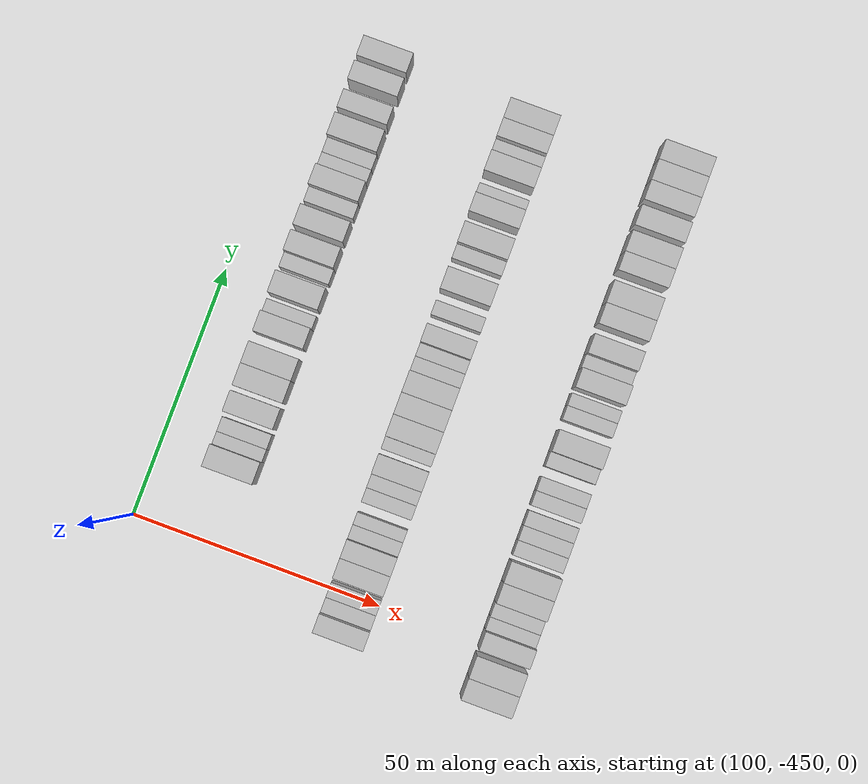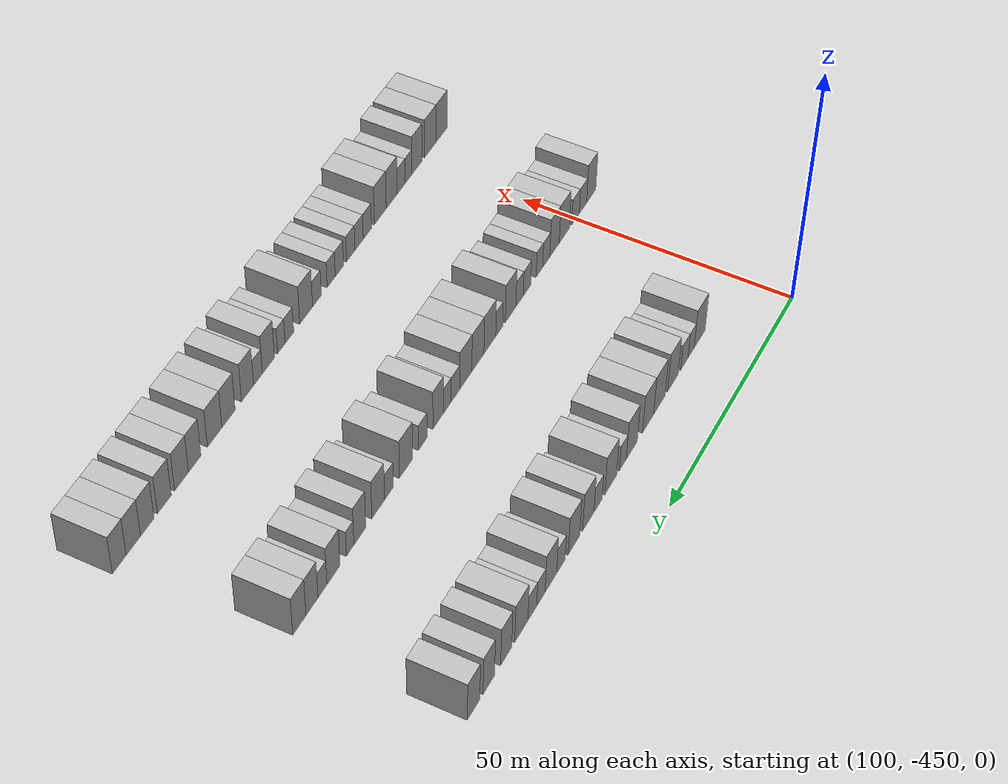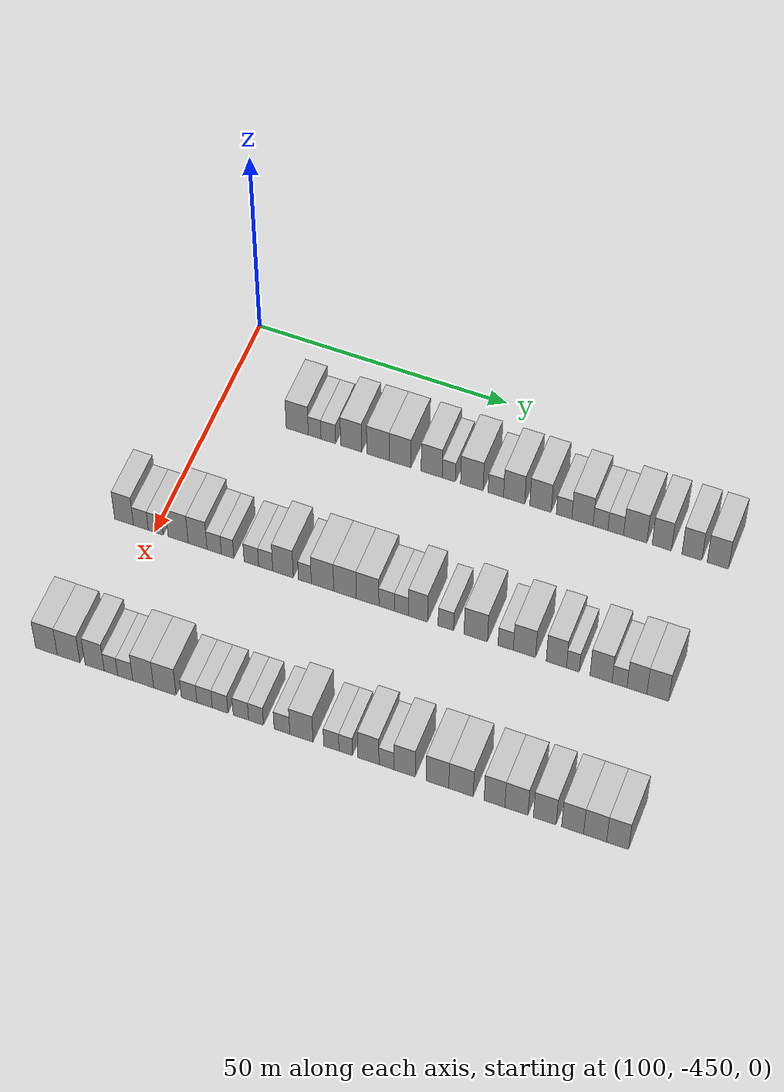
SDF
<sdf version="1.6">
 <world name="default">
  <model name="building_679">
   <static>1</static>
   <pose>115.0000 -434.2148 0 0.000000 0.000000 0.000000</pose>
   <link name="link">
    <pose>0 0 4.50 0 0 0</pose>
    <collision name="collision"><geometry><box><size>10.0000 4.4127 9.0000</size></box></geometry></collision>
    <visual name="visual">
     <cast_shadows>0</cast_shadows>
     <geometry><box><size>10.0000 4.4127 9.0000</size></box></geometry>
     <material>
      <script>
       <uri>model://HANNAS_wall/materials/scripts</uri>
       <uri>model://HANNAS_wall/materials/textures</uri>
       <name>vrc/HANNAS_wall</name>
      </script>
     </material>
    </visual>
   </link>
  </model>
  <model name="building_680">
   <static>1</static>
   <pose>115.0000 -430.7315 0 0.000000 0.000000 0.000000</pose>
   <link name="link">
    <pose>0 0 3.00 0 0 0</pose>
    <collision name="collision"><geometry><box><size>10.0000 2.5537 6.0000</size></box></geometry></collision>
    <visual name="visual">
     <cast_shadows>0</cast_shadows>
     <geometry><box><size>10.0000 2.5537 6.0000</size></box></geometry>
     <material>
      <script>
       <uri>model://HANNAS_wall/materials/scripts</uri>
       <uri>model://HANNAS_wall/materials/textures</uri>
       <name>vrc/HANNAS_wall</name>
      </script>
     </material>
    </visual>
   </link>
  </model>
  <model name="building_681">
   <static>1</static>
   <pose>115.0000 -427.9906 0 0.000000 0.000000 0.000000</pose>
   <link name="link">
    <pose>0 0 3.00 0 0 0</pose>
    <collision name="collision"><geometry><box><size>10.0000 2.9282 6.0000</size></box></geometry></collision>
    <visual name="visual">
     <cast_shadows>0</cast_shadows>
     <geometry><box><size>10.0000 2.9282 6.0000</size></box></geometry>
     <material>
      <script>
       <uri>model://HANNAS_wall/materials/scripts</uri>
       <uri>model://HANNAS_wall/materials/textures</uri>
       <name>vrc/HANNAS_wall</name>
      </script>
     </material>
    </visual>
   </link>
  </model>
  <model name="building_682">
   <static>1</static>
   <pose>115.0000 -423.4315 0 0.000000 0.000000 0.000000</pose>
   <link name="link">
    <pose>0 0 4.50 0 0 0</pose>
    <collision name="collision"><geometry><box><size>10.0000 4.1899 9.0000</size></box></geometry></collision>
    <visual name="visual">
     <cast_shadows>0</cast_shadows>
     <geometry><box><size>10.0000 4.1899 9.0000</size></box></geometry>
     <material>
      <script>
       <uri>model://HANNAS_wall/materials/scripts</uri>
       <uri>model://HANNAS_wall/materials/textures</uri>
       <name>vrc/HANNAS_wall</name>
      </script>
     </material>
    </visual>
   </link>
  </model>
  <model name="building_683">
   <static>1</static>
   <pose>115.0000 -418.1212 0 0.000000 0.000000 0.000000</pose>
   <link name="link">
    <pose>0 0 4.50 0 0 0</pose>
    <collision name="collision"><geometry><box><size>10.0000 4.4307 9.0000</size></box></geometry></collision>
    <visual name="visual">
     <cast_shadows>0</cast_shadows>
     <geometry><box><size>10.0000 4.4307 9.0000</size></box></geometry>
     <material>
      <script>
       <uri>model://HANNAS_wall/materials/scripts</uri>
       <uri>model://HANNAS_wall/materials/textures</uri>
       <name>vrc/HANNAS_wall</name>
      </script>
     </material>
    </visual>
   </link>
  </model>
  <model name="building_684">
   <static>1</static>
   <pose>115.0000 -413.7361 0 0.000000 0.000000 0.000000</pose>
   <link name="link">
    <pose>0 0 4.50 0 0 0</pose>
    <collision name="collision"><geometry><box><size>10.0000 4.3396 9.0000</size></box></geometry></collision>
    <visual name="visual">
     <cast_shadows>0</cast_shadows>
     <geometry><box><size>10.0000 4.3396 9.0000</size></box></geometry>
     <material>
      <script>
       <uri>model://HANNAS_wall/materials/scripts</uri>
       <uri>model://HANNAS_wall/materials/textures</uri>
       <name>vrc/HANNAS_wall</name>
      </script>
     </material>
    </visual>
   </link>
  </model>
  <model name="building_685">
   <static>1</static>
   <pose>115.0000 -407.4911 0 0.000000 0.000000 0.000000</pose>
   <link name="link">
    <pose>0 0 4.50 0 0 0</pose>
    <collision name="collision"><geometry><box><size>10.0000 4.1503 9.0000</size></box></geometry></collision>
    <visual name="visual">
     <cast_shadows>0</cast_shadows>
     <geometry><box><size>10.0000 4.1503 9.0000</size></box></geometry>
     <material>
      <script>
       <uri>model://HANNAS_wall/materials/scripts</uri>
       <uri>model://HANNAS_wall/materials/textures</uri>
       <name>vrc/HANNAS_wall</name>
      </script>
     </material>
    </visual>
   </link>
  </model>
  <model name="building_686">
   <static>1</static>
   <pose>115.0000 -404.1102 0 0.000000 0.000000 0.000000</pose>
   <link name="link">
    <pose>0 0 3.00 0 0 0</pose>
    <collision name="collision"><geometry><box><size>10.0000 2.6116 6.0000</size></box></geometry></collision>
    <visual name="visual">
     <cast_shadows>0</cast_shadows>
     <geometry><box><size>10.0000 2.6116 6.0000</size></box></geometry>
     <material>
      <script>
       <uri>model://HANNAS_wall/materials/scripts</uri>
       <uri>model://HANNAS_wall/materials/textures</uri>
       <name>vrc/HANNAS_wall</name>
      </script>
     </material>
    </visual>
   </link>
  </model>
  <model name="building_687">
   <static>1</static>
   <pose>115.0000 -399.6049 0 0.000000 0.000000 0.000000</pose>
   <link name="link">
    <pose>0 0 4.50 0 0 0</pose>
    <collision name="collision"><geometry><box><size>10.0000 4.3990 9.0000</size></box></geometry></collision>
    <visual name="visual">
     <cast_shadows>0</cast_shadows>
     <geometry><box><size>10.0000 4.3990 9.0000</size></box></geometry>
     <material>
      <script>
       <uri>model://HANNAS_wall/materials/scripts</uri>
       <uri>model://HANNAS_wall/materials/textures</uri>
       <name>vrc/HANNAS_wall</name>
      </script>
     </material>
    </visual>
   </link>
  </model>
  <model name="building_688">
   <static>1</static>
   <pose>115.0000 -394.9107 0 0.000000 0.000000 0.000000</pose>
   <link name="link">
    <pose>0 0 3.00 0 0 0</pose>
    <collision name="collision"><geometry><box><size>10.0000 2.9893 6.0000</size></box></geometry></collision>
    <visual name="visual">
     <cast_shadows>0</cast_shadows>
     <geometry><box><size>10.0000 2.9893 6.0000</size></box></geometry>
     <material>
      <script>
       <uri>model://HANNAS_wall/materials/scripts</uri>
       <uri>model://HANNAS_wall/materials/textures</uri>
       <name>vrc/HANNAS_wall</name>
      </script>
     </material>
    </visual>
   </link>
  </model>
  <model name="building_689">
   <static>1</static>
   <pose>115.0000 -391.3549 0 0.000000 0.000000 0.000000</pose>
   <link name="link">
    <pose>0 0 4.50 0 0 0</pose>
    <collision name="collision"><geometry><box><size>10.0000 4.1223 9.0000</size></box></geometry></collision>
    <visual name="visual">
     <cast_shadows>0</cast_shadows>
     <geometry><box><size>10.0000 4.1223 9.0000</size></box></geometry>
     <material>
      <script>
       <uri>model://HANNAS_wall/materials/scripts</uri>
       <uri>model://HANNAS_wall/materials/textures</uri>
       <name>vrc/HANNAS_wall</name>
      </script>
     </material>
    </visual>
   </link>
  </model>
  <model name="building_690">
   <static>1</static>
   <pose>115.0000 -386.2173 0 0.000000 0.000000 0.000000</pose>
   <link name="link">
    <pose>0 0 4.50 0 0 0</pose>
    <collision name="collision"><geometry><box><size>10.0000 4.1530 9.0000</size></box></geometry></collision>
    <visual name="visual">
     <cast_shadows>0</cast_shadows>
     <geometry><box><size>10.0000 4.1530 9.0000</size></box></geometry>
     <material>
      <script>
       <uri>model://HANNAS_wall/materials/scripts</uri>
       <uri>model://HANNAS_wall/materials/textures</uri>
       <name>vrc/HANNAS_wall</name>
      </script>
     </material>
    </visual>
   </link>
  </model>
  <model name="building_691">
   <static>1</static>
   <pose>115.0000 -381.6441 0 0.000000 0.000000 0.000000</pose>
   <link name="link">
    <pose>0 0 3.00 0 0 0</pose>
    <collision name="collision"><geometry><box><size>10.0000 2.9934 6.0000</size></box></geometry></collision>
    <visual name="visual">
     <cast_shadows>0</cast_shadows>
     <geometry><box><size>10.0000 2.9934 6.0000</size></box></geometry>
     <material>
      <script>
       <uri>model://HANNAS_wall/materials/scripts</uri>
       <uri>model://HANNAS_wall/materials/textures</uri>
       <name>vrc/HANNAS_wall</name>
      </script>
     </material>
    </visual>
   </link>
  </model>
  <model name="building_692">
   <static>1</static>
   <pose>115.0000 -378.1001 0 0.000000 0.000000 0.000000</pose>
   <link name="link">
    <pose>0 0 4.50 0 0 0</pose>
    <collision name="collision"><geometry><box><size>10.0000 4.0947 9.0000</size></box></geometry></collision>
    <visual name="visual">
     <cast_shadows>0</cast_shadows>
     <geometry><box><size>10.0000 4.0947 9.0000</size></box></geometry>
     <material>
      <script>
       <uri>model://HANNAS_wall/materials/scripts</uri>
       <uri>model://HANNAS_wall/materials/textures</uri>
       <name>vrc/HANNAS_wall</name>
      </script>
     </material>
    </visual>
   </link>
  </model>
  <model name="building_693">
   <static>1</static>
   <pose>115.0000 -374.6154 0 0.000000 0.000000 0.000000</pose>
   <link name="link">
    <pose>0 0 3.00 0 0 0</pose>
    <collision name="collision"><geometry><box><size>10.0000 2.8745 6.0000</size></box></geometry></collision>
    <visual name="visual">
     <cast_shadows>0</cast_shadows>
     <geometry><box><size>10.0000 2.8745 6.0000</size></box></geometry>
     <material>
      <script>
       <uri>model://HANNAS_wall/materials/scripts</uri>
       <uri>model://HANNAS_wall/materials/textures</uri>
       <name>vrc/HANNAS_wall</name>
      </script>
     </material>
    </visual>
   </link>
  </model>
  <model name="building_694">
   <static>1</static>
   <pose>115.0000 -371.6786 0 0.000000 0.000000 0.000000</pose>
   <link name="link">
    <pose>0 0 3.00 0 0 0</pose>
    <collision name="collision"><geometry><box><size>10.0000 2.9990 6.0000</size></box></geometry></collision>
    <visual name="visual">
     <cast_shadows>0</cast_shadows>
     <geometry><box><size>10.0000 2.9990 6.0000</size></box></geometry>
     <material>
      <script>
       <uri>model://HANNAS_wall/materials/scripts</uri>
       <uri>model://HANNAS_wall/materials/textures</uri>
       <name>vrc/HANNAS_wall</name>
      </script>
     </material>
    </visual>
   </link>
  </model>
  <model name="building_695">
   <static>1</static>
   <pose>115.0000 -367.9409 0 0.000000 0.000000 0.000000</pose>
   <link name="link">
    <pose>0 0 4.50 0 0 0</pose>
    <collision name="collision"><geometry><box><size>10.0000 4.4765 9.0000</size></box></geometry></collision>
    <visual name="visual">
     <cast_shadows>0</cast_shadows>
     <geometry><box><size>10.0000 4.4765 9.0000</size></box></geometry>
     <material>
      <script>
       <uri>model://HANNAS_wall/materials/scripts</uri>
       <uri>model://HANNAS_wall/materials/textures</uri>
       <name>vrc/HANNAS_wall</name>
      </script>
     </material>
    </visual>
   </link>
  </model>
  <model name="building_696">
   <static>1</static>
   <pose>115.0000 -362.8647 0 0.000000 0.000000 0.000000</pose>
   <link name="link">
    <pose>0 0 4.50 0 0 0</pose>
    <collision name="collision"><geometry><box><size>10.0000 3.6757 9.0000</size></box></geometry></collision>
    <visual name="visual">
     <cast_shadows>0</cast_shadows>
     <geometry><box><size>10.0000 3.6757 9.0000</size></box></geometry>
     <material>
      <script>
       <uri>model://HANNAS_wall/materials/scripts</uri>
       <uri>model://HANNAS_wall/materials/textures</uri>
       <name>vrc/HANNAS_wall</name>
      </script>
     </material>
    </visual>
   </link>
  </model>
  <model name="building_697">
   <static>1</static>
   <pose>115.0000 -357.1258 0 0.000000 0.000000 0.000000</pose>
   <link name="link">
    <pose>0 0 4.50 0 0 0</pose>
    <collision name="collision"><geometry><box><size>10.0000 3.8021 9.0000</size></box></geometry></collision>
    <visual name="visual">
     <cast_shadows>0</cast_shadows>
     <geometry><box><size>10.0000 3.8021 9.0000</size></box></geometry>
     <material>
      <script>
       <uri>model://HANNAS_wall/materials/scripts</uri>
       <uri>model://HANNAS_wall/materials/textures</uri>
       <name>vrc/HANNAS_wall</name>
      </script>
     </material>
    </visual>
   </link>
  </model>
  <model name="building_698">
   <static>1</static>
   <pose>115.0000 -352.2066 0 0.000000 0.000000 0.000000</pose>
   <link name="link">
    <pose>0 0 4.50 0 0 0</pose>
    <collision name="collision"><geometry><box><size>10.0000 4.0363 9.0000</size></box></geometry></collision>
    <visual name="visual">
     <cast_shadows>0</cast_shadows>
     <geometry><box><size>10.0000 4.0363 9.0000</size></box></geometry>
     <material>
      <script>
       <uri>model://HANNAS_wall/materials/scripts</uri>
       <uri>model://HANNAS_wall/materials/textures</uri>
       <name>vrc/HANNAS_wall</name>
      </script>
     </material>
    </visual>
   </link>
  </model>
  <model name="building_902">
   <static>1</static>
   <pose>145.0000 -456.1362 0 0.000000 0.000000 0.000000</pose>
   <link name="link">
    <pose>0 0 4.50 0 0 0</pose>
    <collision name="collision"><geometry><box><size>10.0000 3.7276 9.0000</size></box></geometry></collision>
    <visual name="visual">
     <cast_shadows>0</cast_shadows>
     <geometry><box><size>10.0000 3.7276 9.0000</size></box></geometry>
     <material>
      <script>
       <uri>model://HANNAS_wall/materials/scripts</uri>
       <uri>model://HANNAS_wall/materials/textures</uri>
       <name>vrc/HANNAS_wall</name>
      </script>
     </material>
    </visual>
   </link>
  </model>
  <model name="building_903">
   <static>1</static>
   <pose>145.0000 -452.7965 0 0.000000 0.000000 0.000000</pose>
   <link name="link">
    <pose>0 0 3.00 0 0 0</pose>
    <collision name="collision"><geometry><box><size>10.0000 2.9518 6.0000</size></box></geometry></collision>
    <visual name="visual">
     <cast_shadows>0</cast_shadows>
     <geometry><box><size>10.0000 2.9518 6.0000</size></box></geometry>
     <material>
      <script>
       <uri>model://HANNAS_wall/materials/scripts</uri>
       <uri>model://HANNAS_wall/materials/textures</uri>
       <name>vrc/HANNAS_wall</name>
      </script>
     </material>
    </visual>
   </link>
  </model>
  <model name="building_904">
   <static>1</static>
   <pose>145.0000 -449.8438 0 0.000000 0.000000 0.000000</pose>
   <link name="link">
    <pose>0 0 3.00 0 0 0</pose>
    <collision name="collision"><geometry><box><size>10.0000 2.9536 6.0000</size></box></geometry></collision>
    <visual name="visual">
     <cast_shadows>0</cast_shadows>
     <geometry><box><size>10.0000 2.9536 6.0000</size></box></geometry>
     <material>
      <script>
       <uri>model://HANNAS_wall/materials/scripts</uri>
       <uri>model://HANNAS_wall/materials/textures</uri>
       <name>vrc/HANNAS_wall</name>
      </script>
     </material>
    </visual>
   </link>
  </model>
  <model name="building_905">
   <static>1</static>
   <pose>145.0000 -445.3836 0 0.000000 0.000000 0.000000</pose>
   <link name="link">
    <pose>0 0 4.50 0 0 0</pose>
    <collision name="collision"><geometry><box><size>10.0000 3.9669 9.0000</size></box></geometry></collision>
    <visual name="visual">
     <cast_shadows>0</cast_shadows>
     <geometry><box><size>10.0000 3.9669 9.0000</size></box></geometry>
     <material>
      <script>
       <uri>model://HANNAS_wall/materials/scripts</uri>
       <uri>model://HANNAS_wall/materials/textures</uri>
       <name>vrc/HANNAS_wall</name>
      </script>
     </material>
    </visual>
   </link>
  </model>
  <model name="building_906">
   <static>1</static>
   <pose>145.0000 -441.5487 0 0.000000 0.000000 0.000000</pose>
   <link name="link">
    <pose>0 0 4.50 0 0 0</pose>
    <collision name="collision"><geometry><box><size>10.0000 3.7028 9.0000</size></box></geometry></collision>
    <visual name="visual">
     <cast_shadows>0</cast_shadows>
     <geometry><box><size>10.0000 3.7028 9.0000</size></box></geometry>
     <material>
      <script>
       <uri>model://HANNAS_wall/materials/scripts</uri>
       <uri>model://HANNAS_wall/materials/textures</uri>
       <name>vrc/HANNAS_wall</name>
      </script>
     </material>
    </visual>
   </link>
  </model>
  <model name="building_907">
   <static>1</static>
   <pose>145.0000 -438.2969 0 0.000000 0.000000 0.000000</pose>
   <link name="link">
    <pose>0 0 3.00 0 0 0</pose>
    <collision name="collision"><geometry><box><size>10.0000 2.8007 6.0000</size></box></geometry></collision>
    <visual name="visual">
     <cast_shadows>0</cast_shadows>
     <geometry><box><size>10.0000 2.8007 6.0000</size></box></geometry>
     <material>
      <script>
       <uri>model://HANNAS_wall/materials/scripts</uri>
       <uri>model://HANNAS_wall/materials/textures</uri>
       <name>vrc/HANNAS_wall</name>
      </script>
     </material>
    </visual>
   </link>
  </model>
  <model name="building_908">
   <static>1</static>
   <pose>145.0000 -435.6580 0 0.000000 0.000000 0.000000</pose>
   <link name="link">
    <pose>0 0 3.00 0 0 0</pose>
    <collision name="collision"><geometry><box><size>10.0000 2.4772 6.0000</size></box></geometry></collision>
    <visual name="visual">
     <cast_shadows>0</cast_shadows>
     <geometry><box><size>10.0000 2.4772 6.0000</size></box></geometry>
     <material>
      <script>
       <uri>model://HANNAS_wall/materials/scripts</uri>
       <uri>model://HANNAS_wall/materials/textures</uri>
       <name>vrc/HANNAS_wall</name>
      </script>
     </material>
    </visual>
   </link>
  </model>
  <model name="building_909">
   <static>1</static>
   <pose>145.0000 -430.9965 0 0.000000 0.000000 0.000000</pose>
   <link name="link">
    <pose>0 0 3.00 0 0 0</pose>
    <collision name="collision"><geometry><box><size>10.0000 2.8457 6.0000</size></box></geometry></collision>
    <visual name="visual">
     <cast_shadows>0</cast_shadows>
     <geometry><box><size>10.0000 2.8457 6.0000</size></box></geometry>
     <material>
      <script>
       <uri>model://HANNAS_wall/materials/scripts</uri>
       <uri>model://HANNAS_wall/materials/textures</uri>
       <name>vrc/HANNAS_wall</name>
      </script>
     </material>
    </visual>
   </link>
  </model>
  <model name="building_910">
   <static>1</static>
   <pose>145.0000 -428.1838 0 0.000000 0.000000 0.000000</pose>
   <link name="link">
    <pose>0 0 3.00 0 0 0</pose>
    <collision name="collision"><geometry><box><size>10.0000 2.7797 6.0000</size></box></geometry></collision>
    <visual name="visual">
     <cast_shadows>0</cast_shadows>
     <geometry><box><size>10.0000 2.7797 6.0000</size></box></geometry>
     <material>
      <script>
       <uri>model://HANNAS_wall/materials/scripts</uri>
       <uri>model://HANNAS_wall/materials/textures</uri>
       <name>vrc/HANNAS_wall</name>
      </script>
     </material>
    </visual>
   </link>
  </model>
  <model name="building_911">
   <static>1</static>
   <pose>145.0000 -424.8024 0 0.000000 0.000000 0.000000</pose>
   <link name="link">
    <pose>0 0 4.50 0 0 0</pose>
    <collision name="collision"><geometry><box><size>10.0000 3.9832 9.0000</size></box></geometry></collision>
    <visual name="visual">
     <cast_shadows>0</cast_shadows>
     <geometry><box><size>10.0000 3.9832 9.0000</size></box></geometry>
     <material>
      <script>
       <uri>model://HANNAS_wall/materials/scripts</uri>
       <uri>model://HANNAS_wall/materials/textures</uri>
       <name>vrc/HANNAS_wall</name>
      </script>
     </material>
    </visual>
   </link>
  </model>
  <model name="building_912">
   <static>1</static>
   <pose>145.0000 -420.5620 0 0.000000 0.000000 0.000000</pose>
   <link name="link">
    <pose>0 0 3.00 0 0 0</pose>
    <collision name="collision"><geometry><box><size>10.0000 2.4976 6.0000</size></box></geometry></collision>
    <visual name="visual">
     <cast_shadows>0</cast_shadows>
     <geometry><box><size>10.0000 2.4976 6.0000</size></box></geometry>
     <material>
      <script>
       <uri>model://HANNAS_wall/materials/scripts</uri>
       <uri>model://HANNAS_wall/materials/textures</uri>
       <name>vrc/HANNAS_wall</name>
      </script>
     </material>
    </visual>
   </link>
  </model>
  <model name="building_913">
   <static>1</static>
   <pose>145.0000 -417.1455 0 0.000000 0.000000 0.000000</pose>
   <link name="link">
    <pose>0 0 4.50 0 0 0</pose>
    <collision name="collision"><geometry><box><size>10.0000 4.3353 9.0000</size></box></geometry></collision>
    <visual name="visual">
     <cast_shadows>0</cast_shadows>
     <geometry><box><size>10.0000 4.3353 9.0000</size></box></geometry>
     <material>
      <script>
       <uri>model://HANNAS_wall/materials/scripts</uri>
       <uri>model://HANNAS_wall/materials/textures</uri>
       <name>vrc/HANNAS_wall</name>
      </script>
     </material>
    </visual>
   </link>
  </model>
  <model name="building_914">
   <static>1</static>
   <pose>145.0000 -412.8037 0 0.000000 0.000000 0.000000</pose>
   <link name="link">
    <pose>0 0 4.50 0 0 0</pose>
    <collision name="collision"><geometry><box><size>10.0000 4.3484 9.0000</size></box></geometry></collision>
    <visual name="visual">
     <cast_shadows>0</cast_shadows>
     <geometry><box><size>10.0000 4.3484 9.0000</size></box></geometry>
     <material>
      <script>
       <uri>model://HANNAS_wall/materials/scripts</uri>
       <uri>model://HANNAS_wall/materials/textures</uri>
       <name>vrc/HANNAS_wall</name>
      </script>
     </material>
    </visual>
   </link>
  </model>
  <model name="building_915">
   <static>1</static>
   <pose>145.0000 -408.4480 0 0.000000 0.000000 0.000000</pose>
   <link name="link">
    <pose>0 0 4.50 0 0 0</pose>
    <collision name="collision"><geometry><box><size>10.0000 4.3628 9.0000</size></box></geometry></collision>
    <visual name="visual">
     <cast_shadows>0</cast_shadows>
     <geometry><box><size>10.0000 4.3628 9.0000</size></box></geometry>
     <material>
      <script>
       <uri>model://HANNAS_wall/materials/scripts</uri>
       <uri>model://HANNAS_wall/materials/textures</uri>
       <name>vrc/HANNAS_wall</name>
      </script>
     </material>
    </visual>
   </link>
  </model>
  <model name="building_916">
   <static>1</static>
   <pose>145.0000 -404.7758 0 0.000000 0.000000 0.000000</pose>
   <link name="link">
    <pose>0 0 3.00 0 0 0</pose>
    <collision name="collision"><geometry><box><size>10.0000 2.9817 6.0000</size></box></geometry></collision>
    <visual name="visual">
     <cast_shadows>0</cast_shadows>
     <geometry><box><size>10.0000 2.9817 6.0000</size></box></geometry>
     <material>
      <script>
       <uri>model://HANNAS_wall/materials/scripts</uri>
       <uri>model://HANNAS_wall/materials/textures</uri>
       <name>vrc/HANNAS_wall</name>
      </script>
     </material>
    </visual>
   </link>
  </model>
  <model name="building_917">
   <static>1</static>
   <pose>145.0000 -401.9363 0 0.000000 0.000000 0.000000</pose>
   <link name="link">
    <pose>0 0 3.00 0 0 0</pose>
    <collision name="collision"><geometry><box><size>10.0000 2.6973 6.0000</size></box></geometry></collision>
    <visual name="visual">
     <cast_shadows>0</cast_shadows>
     <geometry><box><size>10.0000 2.6973 6.0000</size></box></geometry>
     <material>
      <script>
       <uri>model://HANNAS_wall/materials/scripts</uri>
       <uri>model://HANNAS_wall/materials/textures</uri>
       <name>vrc/HANNAS_wall</name>
      </script>
     </material>
    </visual>
   </link>
  </model>
  <model name="building_918">
   <static>1</static>
   <pose>145.0000 -398.7618 0 0.000000 0.000000 0.000000</pose>
   <link name="link">
    <pose>0 0 4.50 0 0 0</pose>
    <collision name="collision"><geometry><box><size>10.0000 3.6517 9.0000</size></box></geometry></collision>
    <visual name="visual">
     <cast_shadows>0</cast_shadows>
     <geometry><box><size>10.0000 3.6517 9.0000</size></box></geometry>
     <material>
      <script>
       <uri>model://HANNAS_wall/materials/scripts</uri>
       <uri>model://HANNAS_wall/materials/textures</uri>
       <name>vrc/HANNAS_wall</name>
      </script>
     </material>
    </visual>
   </link>
  </model>
  <model name="building_919">
   <static>1</static>
   <pose>145.0000 -393.4655 0 0.000000 0.000000 0.000000</pose>
   <link name="link">
    <pose>0 0 3.00 0 0 0</pose>
    <collision name="collision"><geometry><box><size>10.0000 2.9409 6.0000</size></box></geometry></collision>
    <visual name="visual">
     <cast_shadows>0</cast_shadows>
     <geometry><box><size>10.0000 2.9409 6.0000</size></box></geometry>
     <material>
      <script>
       <uri>model://HANNAS_wall/materials/scripts</uri>
       <uri>model://HANNAS_wall/materials/textures</uri>
       <name>vrc/HANNAS_wall</name>
      </script>
     </material>
    </visual>
   </link>
  </model>
  <model name="building_920">
   <static>1</static>
   <pose>145.0000 -387.7738 0 0.000000 0.000000 0.000000</pose>
   <link name="link">
    <pose>0 0 4.50 0 0 0</pose>
    <collision name="collision"><geometry><box><size>10.0000 4.4424 9.0000</size></box></geometry></collision>
    <visual name="visual">
     <cast_shadows>0</cast_shadows>
     <geometry><box><size>10.0000 4.4424 9.0000</size></box></geometry>
     <material>
      <script>
       <uri>model://HANNAS_wall/materials/scripts</uri>
       <uri>model://HANNAS_wall/materials/textures</uri>
       <name>vrc/HANNAS_wall</name>
      </script>
     </material>
    </visual>
   </link>
  </model>
  <model name="building_921">
   <static>1</static>
   <pose>145.0000 -382.1110 0 0.000000 0.000000 0.000000</pose>
   <link name="link">
    <pose>0 0 3.00 0 0 0</pose>
    <collision name="collision"><geometry><box><size>10.0000 2.8831 6.0000</size></box></geometry></collision>
    <visual name="visual">
     <cast_shadows>0</cast_shadows>
     <geometry><box><size>10.0000 2.8831 6.0000</size></box></geometry>
     <material>
      <script>
       <uri>model://HANNAS_wall/materials/scripts</uri>
       <uri>model://HANNAS_wall/materials/textures</uri>
       <name>vrc/HANNAS_wall</name>
      </script>
     </material>
    </visual>
   </link>
  </model>
  <model name="building_922">
   <static>1</static>
   <pose>145.0000 -378.5743 0 0.000000 0.000000 0.000000</pose>
   <link name="link">
    <pose>0 0 4.50 0 0 0</pose>
    <collision name="collision"><geometry><box><size>10.0000 4.1902 9.0000</size></box></geometry></collision>
    <visual name="visual">
     <cast_shadows>0</cast_shadows>
     <geometry><box><size>10.0000 4.1902 9.0000</size></box></geometry>
     <material>
      <script>
       <uri>model://HANNAS_wall/materials/scripts</uri>
       <uri>model://HANNAS_wall/materials/textures</uri>
       <name>vrc/HANNAS_wall</name>
      </script>
     </material>
    </visual>
   </link>
  </model>
  <model name="building_923">
   <static>1</static>
   <pose>145.0000 -372.5836 0 0.000000 0.000000 0.000000</pose>
   <link name="link">
    <pose>0 0 4.50 0 0 0</pose>
    <collision name="collision"><geometry><box><size>10.0000 3.7912 9.0000</size></box></geometry></collision>
    <visual name="visual">
     <cast_shadows>0</cast_shadows>
     <geometry><box><size>10.0000 3.7912 9.0000</size></box></geometry>
     <material>
      <script>
       <uri>model://HANNAS_wall/materials/scripts</uri>
       <uri>model://HANNAS_wall/materials/textures</uri>
       <name>vrc/HANNAS_wall</name>
      </script>
     </material>
    </visual>
   </link>
  </model>
  <model name="building_924">
   <static>1</static>
   <pose>145.0000 -369.4856 0 0.000000 0.000000 0.000000</pose>
   <link name="link">
    <pose>0 0 3.00 0 0 0</pose>
    <collision name="collision"><geometry><box><size>10.0000 2.4049 6.0000</size></box></geometry></collision>
    <visual name="visual">
     <cast_shadows>0</cast_shadows>
     <geometry><box><size>10.0000 2.4049 6.0000</size></box></geometry>
     <material>
      <script>
       <uri>model://HANNAS_wall/materials/scripts</uri>
       <uri>model://HANNAS_wall/materials/textures</uri>
       <name>vrc/HANNAS_wall</name>
      </script>
     </material>
    </visual>
   </link>
  </model>
  <model name="building_925">
   <static>1</static>
   <pose>145.0000 -364.2286 0 0.000000 0.000000 0.000000</pose>
   <link name="link">
    <pose>0 0 4.50 0 0 0</pose>
    <collision name="collision"><geometry><box><size>10.0000 4.1092 9.0000</size></box></geometry></collision>
    <visual name="visual">
     <cast_shadows>0</cast_shadows>
     <geometry><box><size>10.0000 4.1092 9.0000</size></box></geometry>
     <material>
      <script>
       <uri>model://HANNAS_wall/materials/scripts</uri>
       <uri>model://HANNAS_wall/materials/textures</uri>
       <name>vrc/HANNAS_wall</name>
      </script>
     </material>
    </visual>
   </link>
  </model>
  <model name="building_926">
   <static>1</static>
   <pose>145.0000 -360.7850 0 0.000000 0.000000 0.000000</pose>
   <link name="link">
    <pose>0 0 3.00 0 0 0</pose>
    <collision name="collision"><geometry><box><size>10.0000 2.7780 6.0000</size></box></geometry></collision>
    <visual name="visual">
     <cast_shadows>0</cast_shadows>
     <geometry><box><size>10.0000 2.7780 6.0000</size></box></geometry>
     <material>
      <script>
       <uri>model://HANNAS_wall/materials/scripts</uri>
       <uri>model://HANNAS_wall/materials/textures</uri>
       <name>vrc/HANNAS_wall</name>
      </script>
     </material>
    </visual>
   </link>
  </model>
  <model name="building_927">
   <static>1</static>
   <pose>145.0000 -357.5491 0 0.000000 0.000000 0.000000</pose>
   <link name="link">
    <pose>0 0 4.50 0 0 0</pose>
    <collision name="collision"><geometry><box><size>10.0000 3.6938 9.0000</size></box></geometry></collision>
    <visual name="visual">
     <cast_shadows>0</cast_shadows>
     <geometry><box><size>10.0000 3.6938 9.0000</size></box></geometry>
     <material>
      <script>
       <uri>model://HANNAS_wall/materials/scripts</uri>
       <uri>model://HANNAS_wall/materials/textures</uri>
       <name>vrc/HANNAS_wall</name>
      </script>
     </material>
    </visual>
   </link>
  </model>
  <model name="building_928">
   <static>1</static>
   <pose>145.0000 -353.6862 0 0.000000 0.000000 0.000000</pose>
   <link name="link">
    <pose>0 0 4.50 0 0 0</pose>
    <collision name="collision"><geometry><box><size>10.0000 4.0320 9.0000</size></box></geometry></collision>
    <visual name="visual">
     <cast_shadows>0</cast_shadows>
     <geometry><box><size>10.0000 4.0320 9.0000</size></box></geometry>
     <material>
      <script>
       <uri>model://HANNAS_wall/materials/scripts</uri>
       <uri>model://HANNAS_wall/materials/textures</uri>
       <name>vrc/HANNAS_wall</name>
      </script>
     </material>
    </visual>
   </link>
  </model>
  <model name="building_1109">
   <static>1</static>
   <pose>175.0000 -457.8905 0 0.000000 0.000000 0.000000</pose>
   <link name="link">
    <pose>0 0 4.50 0 0 0</pose>
    <collision name="collision"><geometry><box><size>10.0000 4.2190 9.0000</size></box></geometry></collision>
    <visual name="visual">
     <cast_shadows>0</cast_shadows>
     <geometry><box><size>10.0000 4.2190 9.0000</size></box></geometry>
     <material>
      <script>
       <uri>model://HANNAS_wall/materials/scripts</uri>
       <uri>model://HANNAS_wall/materials/textures</uri>
       <name>vrc/HANNAS_wall</name>
      </script>
     </material>
    </visual>
   </link>
  </model>
  <model name="building_1110">
   <static>1</static>
   <pose>175.0000 -453.5835 0 0.000000 0.000000 0.000000</pose>
   <link name="link">
    <pose>0 0 4.50 0 0 0</pose>
    <collision name="collision"><geometry><box><size>10.0000 4.3950 9.0000</size></box></geometry></collision>
    <visual name="visual">
     <cast_shadows>0</cast_shadows>
     <geometry><box><size>10.0000 4.3950 9.0000</size></box></geometry>
     <material>
      <script>
       <uri>model://HANNAS_wall/materials/scripts</uri>
       <uri>model://HANNAS_wall/materials/textures</uri>
       <name>vrc/HANNAS_wall</name>
      </script>
     </material>
    </visual>
   </link>
  </model>
  <model name="building_1111">
   <static>1</static>
   <pose>175.0000 -448.5337 0 0.000000 0.000000 0.000000</pose>
   <link name="link">
    <pose>0 0 4.50 0 0 0</pose>
    <collision name="collision"><geometry><box><size>10.0000 3.7046 9.0000</size></box></geometry></collision>
    <visual name="visual">
     <cast_shadows>0</cast_shadows>
     <geometry><box><size>10.0000 3.7046 9.0000</size></box></geometry>
     <material>
      <script>
       <uri>model://HANNAS_wall/materials/scripts</uri>
       <uri>model://HANNAS_wall/materials/textures</uri>
       <name>vrc/HANNAS_wall</name>
      </script>
     </material>
    </visual>
   </link>
  </model>
  <model name="building_1112">
   <static>1</static>
   <pose>175.0000 -445.3770 0 0.000000 0.000000 0.000000</pose>
   <link name="link">
    <pose>0 0 3.00 0 0 0</pose>
    <collision name="collision"><geometry><box><size>10.0000 2.6089 6.0000</size></box></geometry></collision>
    <visual name="visual">
     <cast_shadows>0</cast_shadows>
     <geometry><box><size>10.0000 2.6089 6.0000</size></box></geometry>
     <material>
      <script>
       <uri>model://HANNAS_wall/materials/scripts</uri>
       <uri>model://HANNAS_wall/materials/textures</uri>
       <name>vrc/HANNAS_wall</name>
      </script>
     </material>
    </visual>
   </link>
  </model>
  <model name="building_1113">
   <static>1</static>
   <pose>175.0000 -442.6216 0 0.000000 0.000000 0.000000</pose>
   <link name="link">
    <pose>0 0 3.00 0 0 0</pose>
    <collision name="collision"><geometry><box><size>10.0000 2.9018 6.0000</size></box></geometry></collision>
    <visual name="visual">
     <cast_shadows>0</cast_shadows>
     <geometry><box><size>10.0000 2.9018 6.0000</size></box></geometry>
     <material>
      <script>
       <uri>model://HANNAS_wall/materials/scripts</uri>
       <uri>model://HANNAS_wall/materials/textures</uri>
       <name>vrc/HANNAS_wall</name>
      </script>
     </material>
    </visual>
   </link>
  </model>
  <model name="building_1114">
   <static>1</static>
   <pose>175.0000 -439.1679 0 0.000000 0.000000 0.000000</pose>
   <link name="link">
    <pose>0 0 4.50 0 0 0</pose>
    <collision name="collision"><geometry><box><size>10.0000 4.0056 9.0000</size></box></geometry></collision>
    <visual name="visual">
     <cast_shadows>0</cast_shadows>
     <geometry><box><size>10.0000 4.0056 9.0000</size></box></geometry>
     <material>
      <script>
       <uri>model://HANNAS_wall/materials/scripts</uri>
       <uri>model://HANNAS_wall/materials/textures</uri>
       <name>vrc/HANNAS_wall</name>
      </script>
     </material>
    </visual>
   </link>
  </model>
  <model name="building_1115">
   <static>1</static>
   <pose>175.0000 -435.0131 0 0.000000 0.000000 0.000000</pose>
   <link name="link">
    <pose>0 0 4.50 0 0 0</pose>
    <collision name="collision"><geometry><box><size>10.0000 4.3040 9.0000</size></box></geometry></collision>
    <visual name="visual">
     <cast_shadows>0</cast_shadows>
     <geometry><box><size>10.0000 4.3040 9.0000</size></box></geometry>
     <material>
      <script>
       <uri>model://HANNAS_wall/materials/scripts</uri>
       <uri>model://HANNAS_wall/materials/textures</uri>
       <name>vrc/HANNAS_wall</name>
      </script>
     </material>
    </visual>
   </link>
  </model>
  <model name="building_1116">
   <static>1</static>
   <pose>175.0000 -430.3739 0 0.000000 0.000000 0.000000</pose>
   <link name="link">
    <pose>0 0 3.00 0 0 0</pose>
    <collision name="collision"><geometry><box><size>10.0000 2.9744 6.0000</size></box></geometry></collision>
    <visual name="visual">
     <cast_shadows>0</cast_shadows>
     <geometry><box><size>10.0000 2.9744 6.0000</size></box></geometry>
     <material>
      <script>
       <uri>model://HANNAS_wall/materials/scripts</uri>
       <uri>model://HANNAS_wall/materials/textures</uri>
       <name>vrc/HANNAS_wall</name>
      </script>
     </material>
    </visual>
   </link>
  </model>
  <model name="building_1117">
   <static>1</static>
   <pose>175.0000 -427.4202 0 0.000000 0.000000 0.000000</pose>
   <link name="link">
    <pose>0 0 3.00 0 0 0</pose>
    <collision name="collision"><geometry><box><size>10.0000 2.9330 6.0000</size></box></geometry></collision>
    <visual name="visual">
     <cast_shadows>0</cast_shadows>
     <geometry><box><size>10.0000 2.9330 6.0000</size></box></geometry>
     <material>
      <script>
       <uri>model://HANNAS_wall/materials/scripts</uri>
       <uri>model://HANNAS_wall/materials/textures</uri>
       <name>vrc/HANNAS_wall</name>
      </script>
     </material>
    </visual>
   </link>
  </model>
  <model name="building_1118">
   <static>1</static>
   <pose>175.0000 -424.4614 0 0.000000 0.000000 0.000000</pose>
   <link name="link">
    <pose>0 0 3.00 0 0 0</pose>
    <collision name="collision"><geometry><box><size>10.0000 2.9847 6.0000</size></box></geometry></collision>
    <visual name="visual">
     <cast_shadows>0</cast_shadows>
     <geometry><box><size>10.0000 2.9847 6.0000</size></box></geometry>
     <material>
      <script>
       <uri>model://HANNAS_wall/materials/scripts</uri>
       <uri>model://HANNAS_wall/materials/textures</uri>
       <name>vrc/HANNAS_wall</name>
      </script>
     </material>
    </visual>
   </link>
  </model>
  <model name="building_1119">
   <static>1</static>
   <pose>175.0000 -420.5088 0 0.000000 0.000000 0.000000</pose>
   <link name="link">
    <pose>0 0 3.00 0 0 0</pose>
    <collision name="collision"><geometry><box><size>10.0000 2.9205 6.0000</size></box></geometry></collision>
    <visual name="visual">
     <cast_shadows>0</cast_shadows>
     <geometry><box><size>10.0000 2.9205 6.0000</size></box></geometry>
     <material>
      <script>
       <uri>model://HANNAS_wall/materials/scripts</uri>
       <uri>model://HANNAS_wall/materials/textures</uri>
       <name>vrc/HANNAS_wall</name>
      </script>
     </material>
    </visual>
   </link>
  </model>
  <model name="building_1120">
   <static>1</static>
   <pose>175.0000 -417.6410 0 0.000000 0.000000 0.000000</pose>
   <link name="link">
    <pose>0 0 3.00 0 0 0</pose>
    <collision name="collision"><geometry><box><size>10.0000 2.8151 6.0000</size></box></geometry></collision>
    <visual name="visual">
     <cast_shadows>0</cast_shadows>
     <geometry><box><size>10.0000 2.8151 6.0000</size></box></geometry>
     <material>
      <script>
       <uri>model://HANNAS_wall/materials/scripts</uri>
       <uri>model://HANNAS_wall/materials/textures</uri>
       <name>vrc/HANNAS_wall</name>
      </script>
     </material>
    </visual>
   </link>
  </model>
  <model name="building_1121">
   <static>1</static>
   <pose>175.0000 -412.7511 0 0.000000 0.000000 0.000000</pose>
   <link name="link">
    <pose>0 0 3.00 0 0 0</pose>
    <collision name="collision"><geometry><box><size>10.0000 2.9648 6.0000</size></box></geometry></collision>
    <visual name="visual">
     <cast_shadows>0</cast_shadows>
     <geometry><box><size>10.0000 2.9648 6.0000</size></box></geometry>
     <material>
      <script>
       <uri>model://HANNAS_wall/materials/scripts</uri>
       <uri>model://HANNAS_wall/materials/textures</uri>
       <name>vrc/HANNAS_wall</name>
      </script>
     </material>
    </visual>
   </link>
  </model>
  <model name="building_1122">
   <static>1</static>
   <pose>175.0000 -409.0902 0 0.000000 0.000000 0.000000</pose>
   <link name="link">
    <pose>0 0 4.50 0 0 0</pose>
    <collision name="collision"><geometry><box><size>10.0000 4.3569 9.0000</size></box></geometry></collision>
    <visual name="visual">
     <cast_shadows>0</cast_shadows>
     <geometry><box><size>10.0000 4.3569 9.0000</size></box></geometry>
     <material>
      <script>
       <uri>model://HANNAS_wall/materials/scripts</uri>
       <uri>model://HANNAS_wall/materials/textures</uri>
       <name>vrc/HANNAS_wall</name>
      </script>
     </material>
    </visual>
   </link>
  </model>
  <model name="building_1123">
   <static>1</static>
   <pose>175.0000 -403.4859 0 0.000000 0.000000 0.000000</pose>
   <link name="link">
    <pose>0 0 3.00 0 0 0</pose>
    <collision name="collision"><geometry><box><size>10.0000 2.8518 6.0000</size></box></geometry></collision>
    <visual name="visual">
     <cast_shadows>0</cast_shadows>
     <geometry><box><size>10.0000 2.8518 6.0000</size></box></geometry>
     <material>
      <script>
       <uri>model://HANNAS_wall/materials/scripts</uri>
       <uri>model://HANNAS_wall/materials/textures</uri>
       <name>vrc/HANNAS_wall</name>
      </script>
     </material>
    </visual>
   </link>
  </model>
  <model name="building_1124">
   <static>1</static>
   <pose>175.0000 -400.8041 0 0.000000 0.000000 0.000000</pose>
   <link name="link">
    <pose>0 0 3.00 0 0 0</pose>
    <collision name="collision"><geometry><box><size>10.0000 2.5117 6.0000</size></box></geometry></collision>
    <visual name="visual">
     <cast_shadows>0</cast_shadows>
     <geometry><box><size>10.0000 2.5117 6.0000</size></box></geometry>
     <material>
      <script>
       <uri>model://HANNAS_wall/materials/scripts</uri>
       <uri>model://HANNAS_wall/materials/textures</uri>
       <name>vrc/HANNAS_wall</name>
      </script>
     </material>
    </visual>
   </link>
  </model>
  <model name="building_1125">
   <static>1</static>
   <pose>175.0000 -396.5764 0 0.000000 0.000000 0.000000</pose>
   <link name="link">
    <pose>0 0 4.50 0 0 0</pose>
    <collision name="collision"><geometry><box><size>10.0000 3.9437 9.0000</size></box></geometry></collision>
    <visual name="visual">
     <cast_shadows>0</cast_shadows>
     <geometry><box><size>10.0000 3.9437 9.0000</size></box></geometry>
     <material>
      <script>
       <uri>model://HANNAS_wall/materials/scripts</uri>
       <uri>model://HANNAS_wall/materials/textures</uri>
       <name>vrc/HANNAS_wall</name>
      </script>
     </material>
    </visual>
   </link>
  </model>
  <model name="building_1126">
   <static>1</static>
   <pose>175.0000 -393.1866 0 0.000000 0.000000 0.000000</pose>
   <link name="link">
    <pose>0 0 3.00 0 0 0</pose>
    <collision name="collision"><geometry><box><size>10.0000 2.8358 6.0000</size></box></geometry></collision>
    <visual name="visual">
     <cast_shadows>0</cast_shadows>
     <geometry><box><size>10.0000 2.8358 6.0000</size></box></geometry>
     <material>
      <script>
       <uri>model://HANNAS_wall/materials/scripts</uri>
       <uri>model://HANNAS_wall/materials/textures</uri>
       <name>vrc/HANNAS_wall</name>
      </script>
     </material>
    </visual>
   </link>
  </model>
  <model name="building_1127">
   <static>1</static>
   <pose>175.0000 -389.8239 0 0.000000 0.000000 0.000000</pose>
   <link name="link">
    <pose>0 0 4.50 0 0 0</pose>
    <collision name="collision"><geometry><box><size>10.0000 3.8897 9.0000</size></box></geometry></collision>
    <visual name="visual">
     <cast_shadows>0</cast_shadows>
     <geometry><box><size>10.0000 3.8897 9.0000</size></box></geometry>
     <material>
      <script>
       <uri>model://HANNAS_wall/materials/scripts</uri>
       <uri>model://HANNAS_wall/materials/textures</uri>
       <name>vrc/HANNAS_wall</name>
      </script>
     </material>
    </visual>
   </link>
  </model>
  <model name="building_1128">
   <static>1</static>
   <pose>175.0000 -383.7833 0 0.000000 0.000000 0.000000</pose>
   <link name="link">
    <pose>0 0 4.50 0 0 0</pose>
    <collision name="collision"><geometry><box><size>10.0000 4.1916 9.0000</size></box></geometry></collision>
    <visual name="visual">
     <cast_shadows>0</cast_shadows>
     <geometry><box><size>10.0000 4.1916 9.0000</size></box></geometry>
     <material>
      <script>
       <uri>model://HANNAS_wall/materials/scripts</uri>
       <uri>model://HANNAS_wall/materials/textures</uri>
       <name>vrc/HANNAS_wall</name>
      </script>
     </material>
    </visual>
   </link>
  </model>
  <model name="building_1129">
   <static>1</static>
   <pose>175.0000 -379.4402 0 0.000000 0.000000 0.000000</pose>
   <link name="link">
    <pose>0 0 4.50 0 0 0</pose>
    <collision name="collision"><geometry><box><size>10.0000 4.4946 9.0000</size></box></geometry></collision>
    <visual name="visual">
     <cast_shadows>0</cast_shadows>
     <geometry><box><size>10.0000 4.4946 9.0000</size></box></geometry>
     <material>
      <script>
       <uri>model://HANNAS_wall/materials/scripts</uri>
       <uri>model://HANNAS_wall/materials/textures</uri>
       <name>vrc/HANNAS_wall</name>
      </script>
     </material>
    </visual>
   </link>
  </model>
  <model name="building_1130">
   <static>1</static>
   <pose>175.0000 -373.2899 0 0.000000 0.000000 0.000000</pose>
   <link name="link">
    <pose>0 0 4.50 0 0 0</pose>
    <collision name="collision"><geometry><box><size>10.0000 3.8061 9.0000</size></box></geometry></collision>
    <visual name="visual">
     <cast_shadows>0</cast_shadows>
     <geometry><box><size>10.0000 3.8061 9.0000</size></box></geometry>
     <material>
      <script>
       <uri>model://HANNAS_wall/materials/scripts</uri>
       <uri>model://HANNAS_wall/materials/textures</uri>
       <name>vrc/HANNAS_wall</name>
      </script>
     </material>
    </visual>
   </link>
  </model>
  <model name="building_1131">
   <static>1</static>
   <pose>175.0000 -369.2837 0 0.000000 0.000000 0.000000</pose>
   <link name="link">
    <pose>0 0 4.50 0 0 0</pose>
    <collision name="collision"><geometry><box><size>10.0000 4.2063 9.0000</size></box></geometry></collision>
    <visual name="visual">
     <cast_shadows>0</cast_shadows>
     <geometry><box><size>10.0000 4.2063 9.0000</size></box></geometry>
     <material>
      <script>
       <uri>model://HANNAS_wall/materials/scripts</uri>
       <uri>model://HANNAS_wall/materials/textures</uri>
       <name>vrc/HANNAS_wall</name>
      </script>
     </material>
    </visual>
   </link>
  </model>
  <model name="building_1132">
   <static>1</static>
   <pose>175.0000 -364.1199 0 0.000000 0.000000 0.000000</pose>
   <link name="link">
    <pose>0 0 4.50 0 0 0</pose>
    <collision name="collision"><geometry><box><size>10.0000 4.1214 9.0000</size></box></geometry></collision>
    <visual name="visual">
     <cast_shadows>0</cast_shadows>
     <geometry><box><size>10.0000 4.1214 9.0000</size></box></geometry>
     <material>
      <script>
       <uri>model://HANNAS_wall/materials/scripts</uri>
       <uri>model://HANNAS_wall/materials/textures</uri>
       <name>vrc/HANNAS_wall</name>
      </script>
     </material>
    </visual>
   </link>
  </model>
  <model name="building_1133">
   <static>1</static>
   <pose>175.0000 -359.0722 0 0.000000 0.000000 0.000000</pose>
   <link name="link">
    <pose>0 0 4.50 0 0 0</pose>
    <collision name="collision"><geometry><box><size>10.0000 3.9740 9.0000</size></box></geometry></collision>
    <visual name="visual">
     <cast_shadows>0</cast_shadows>
     <geometry><box><size>10.0000 3.9740 9.0000</size></box></geometry>
     <material>
      <script>
       <uri>model://HANNAS_wall/materials/scripts</uri>
       <uri>model://HANNAS_wall/materials/textures</uri>
       <name>vrc/HANNAS_wall</name>
      </script>
     </material>
    </visual>
   </link>
  </model>
  <model name="building_1134">
   <static>1</static>
   <pose>175.0000 -355.0075 0 0.000000 0.000000 0.000000</pose>
   <link name="link">
    <pose>0 0 4.50 0 0 0</pose>
    <collision name="collision"><geometry><box><size>10.0000 4.1555 9.0000</size></box></geometry></collision>
    <visual name="visual">
     <cast_shadows>0</cast_shadows>
     <geometry><box><size>10.0000 4.1555 9.0000</size></box></geometry>
     <material>
      <script>
       <uri>model://HANNAS_wall/materials/scripts</uri>
       <uri>model://HANNAS_wall/materials/textures</uri>
       <name>vrc/HANNAS_wall</name>
      </script>
     </material>
    </visual>
   </link>
  </model>
  <model name="building_1135">
   <static>1</static>
   <pose>175.0000 -350.9469 0 0.000000 0.000000 0.000000</pose>
   <link name="link">
    <pose>0 0 4.50 0 0 0</pose>
    <collision name="collision"><geometry><box><size>10.0000 3.9658 9.0000</size></box></geometry></collision>
    <visual name="visual">
     <cast_shadows>0</cast_shadows>
     <geometry><box><size>10.0000 3.9658 9.0000</size></box></geometry>
     <material>
      <script>
       <uri>model://HANNAS_wall/materials/scripts</uri>
       <uri>model://HANNAS_wall/materials/textures</uri>
       <name>vrc/HANNAS_wall</name>
      </script>
     </material>
    </visual>
   </link>
  </model>
 </world>
</sdf>
